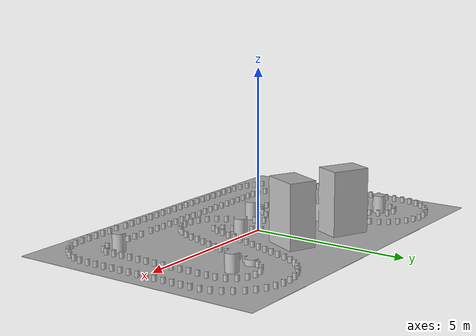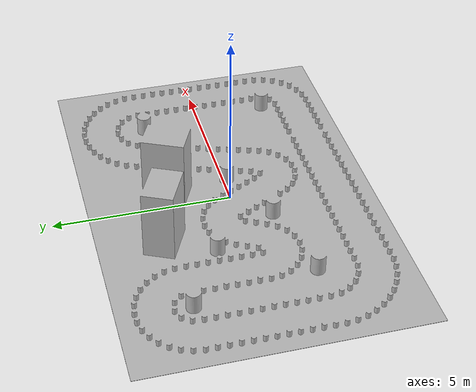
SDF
<?xml version="1.0" ?>
<sdf version="1.6">
  <model name="ai_course">
    <static>true</static>
    <link name="link">
      <collision name="collision">
        <geometry>
          <mesh>
            <uri>model://ai_course/meshes/course.dae</uri>
          </mesh>
        </geometry>
      </collision>
      <visual name="visual">
        <geometry>
          <mesh>
            <uri>model://ai_course/meshes/course.dae</uri>
          </mesh>
        </geometry>
      </visual>
    </link>
  </model>
</sdf>
